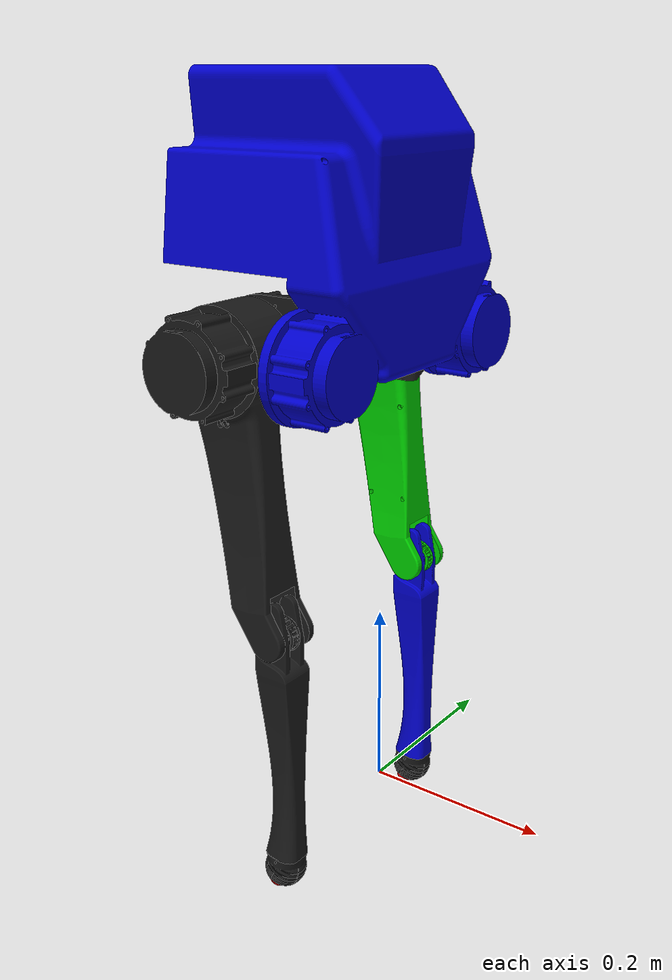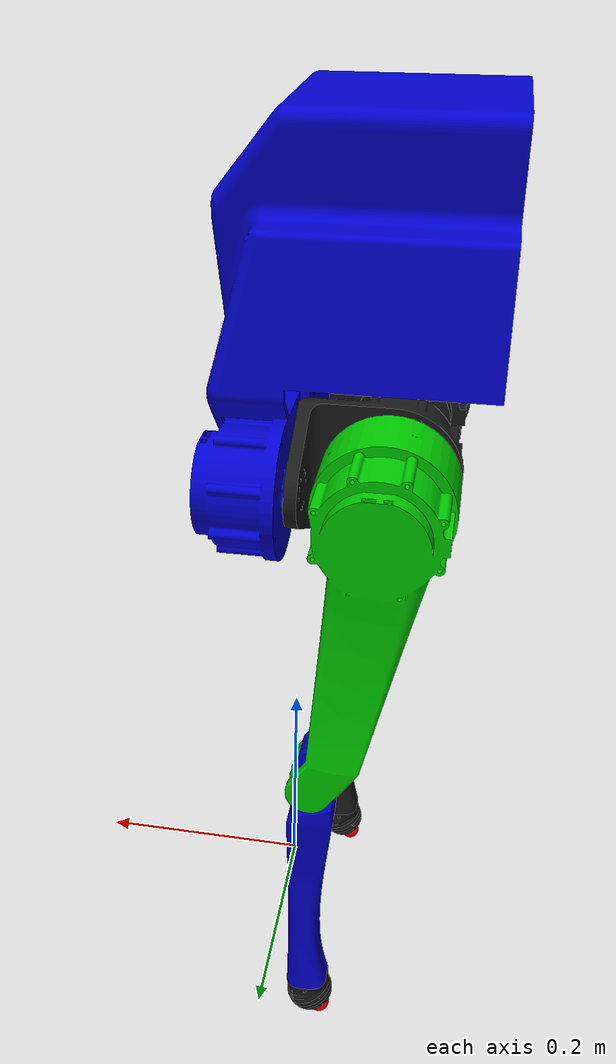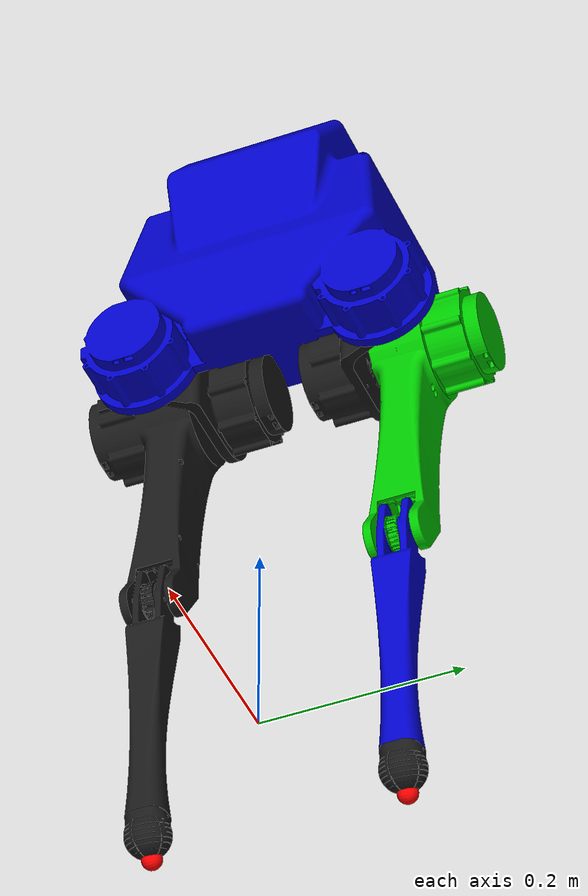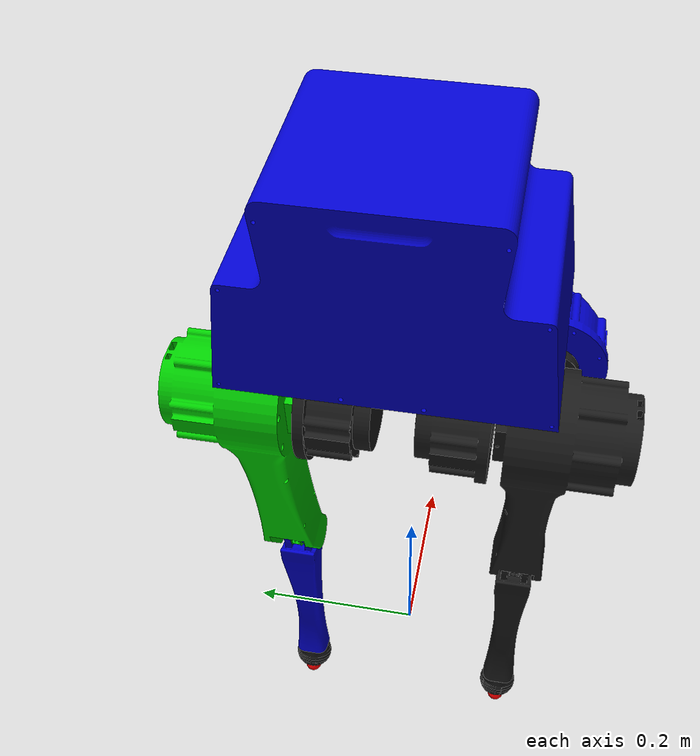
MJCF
<mujoco model="bipedal_robot">
  <compiler angle="radian" meshdir="../meshes/final_stl"/>

  <option integrator="implicitfast"/>

  <default>
    <geom contype="0" conaffinity="0"/>
  </default>

  <asset>
    <mesh name="body_v3_urdf" content_type="model/stl" file="body_v3_urdf.STL" scale="0.001 0.001 0.001"/>
    <mesh name="hip" content_type="model/stl" file="hip.STL" scale="0.001 0.001 0.001"/>
    <mesh name="femur_L_FINAL" content_type="model/stl" file="femur_L_FINAL.STL" scale="0.001 0.001 0.001"/>
    <mesh name="tibia_final" content_type="model/stl" file="tibia_final.STL" scale="0.001 0.001 0.001"/>
    <mesh name="foot_v4" content_type="model/stl" file="foot_v4.STL" scale="0.001 0.001 0.001"/>
    <mesh name="femur_R_FINAL" content_type="model/stl" file="femur_R_FINAL.STL" scale="0.001 0.001 0.001"/>
  </asset>

  <worldbody>
    <body name="base" pos="0 0 0.475">

      <freejoint name="base_free"/>

      <inertial pos="-0.00011 0.0 -0.04551" mass="7.13137"
                fullinertia="0.081061 0.106576 0.129409 0.000089 -0.000051 -0.022384"/>
      <geom pos="0 0 0" quat="0.499998 0.5 0.500002 0.5" type="mesh" rgba="0 0 0.8 1" mesh="body_v3_urdf"/>
    <body name="left_hip_connector_link" pos="-0.0125004 0.125 0.02088" quat="-3.89602e-06 -1.29867e-06 0.707107 0.707107">
      <inertial pos="0.06026 0.02088 -0.08217" quat="0.980491 0.00014315 -0.196565 0.000271321" mass="1.02839" diaginertia="0.00155031 0.001299 0.000962692"/>
      <joint name="left_hip_yaw" pos="0 0 0" axis="1 0 0" range="-1.57 0.5" actuatorfrcrange="-60 60" damping="0.1" frictionloss="0.01"/>
      <geom type="mesh" rgba="0.1 0.1 0.1 1" mesh="hip"/>
      <body name="left_femur_link" pos="0.074 0 0" quat="0.499998 0.5 -0.500002 -0.5">
        <inertial pos="0.16258 -0.0111 -0.08518" quat="0.298127 0.439729 -0.581363 0.616259" mass="1.45045" diaginertia="0.0100726 0.00963238 0.00200906"/>
        <joint name="left_hip_pitch" pos="0 0 0" axis="0 1 0" range="-0.18 2" actuatorfrcrange="-60 60" damping="0.1" frictionloss="0.01"/>
        <geom type="mesh" rgba="0 0.8 0 1" mesh="femur_L_FINAL"/>
        <body name="left_tibia_link" pos="0.28154 0 0.05165" quat="1.32679e-06 1 0 0">
          <inertial pos="0.132073 -0.372053 -0.0565048" quat="0.732657 0.672872 -0.0779594 0.0661738" mass="0.32337" diaginertia="0.00273931 0.0026494 0.000153024"/>
          <joint name="left_knee" pos="0 0 0" axis="0 1 0" range="0 2.57" actuatorfrcrange="-60 60" damping="0.1" frictionloss="0.01"/>
          <geom type="mesh" rgba="0 0 0.8 1" mesh="tibia_final"/>

          <!-- Change contype and conaffinity to 1 for contacts -->
          <geom pos="0.29957 0 0.01196" quat="0.601126 -0.601128 0.372352 0.372353" type="mesh" rgba="0.1 0.1 0.1 1" mesh="foot_v4" contype="1" conaffinity="1" condim="4"/>

          <!-- Contact point for RobotModel footPose/footJacobian (co-located with the foot geom). -->
          <site name="left_foot" pos="0.29957 0 0.01196" quat="0.601126 -0.601128 0.372352 0.372353" size="0.01" rgba="1 0 0 1"/>
        </body>
      </body>
    </body>
    <body name="right_hip_connector_link" pos="-0.0124995 -0.125 0.02088" quat="1.29867e-06 -3.89602e-06 0.707108 -0.707106">
      <inertial pos="0.060260 -0.020880 -0.082171" quat="0.000141 0.980492 -0.000270 0.196558" mass="1.02839" diaginertia="0.00155031 0.001299 0.000962692"/>
      <joint name="right_hip_yaw" pos="0 0 0" axis="1 0 0" range="-0.5 1.57" actuatorfrcrange="-60 60" damping="0.1" frictionloss="0.01"/>
      <geom type="mesh" rgba="0.1 0.1 0.1 1" mesh="hip"/>
      <body name="right_femur_link" pos="0.074 0 0" quat="0.499998 0.5 0.500002 0.5">
        <!-- Mirrored from left_femur_link. -->
        <inertial pos="0.162581 -0.011102 0.085180" quat="0.298128 -0.439727 0.581362 0.616262" mass="1.45045" diaginertia="0.0100726 0.00963238 0.00200906"/>
        <joint name="right_hip_pitch" pos="0 0 0" axis="0 1 0" range="-2 0.18" actuatorfrcrange="-60 60" damping="0.1" frictionloss="0.01"/>
        <geom type="mesh" rgba="0.1 0.1 0.1 1" mesh="femur_R_FINAL"/>
        <body name="right_tibia_link" pos="0.28154 0 -0.05165">
          <!-- Mirrored from left_tibia_link. -->
          <inertial pos="0.132070 0.372053 -0.056504" quat="0.672871 0.732659 -0.066170 0.077961" mass="0.32337" diaginertia="0.00273931 0.0026494 0.000153024"/>
          <joint name="right_knee" pos="0 0 0" axis="0 1 0" range="0 2.57" actuatorfrcrange="-60 60" damping="0.1" frictionloss="0.01"/>
          <geom type="mesh" rgba="0.1 0.1 0.1 1" mesh="tibia_final"/>

          <geom pos="0.29977 0 0.01196" quat="0.601126 -0.601128 0.372352 0.372353" type="mesh" rgba="0.1 0.1 0.1 1" mesh="foot_v4" contype="1" conaffinity="1" condim="4"/>

          <!-- Contact point for RobotModel footPose/footJacobian (co-located with the foot geom). -->
          <site name="right_foot" pos="0.29977 0 0.01196" quat="0.601126 -0.601128 0.372352 0.372353" size="0.01" rgba="1 0 0 1"/>
        </body>
      </body>
    </body>
    </body>
  </worldbody>

  <!-- Feet collide with the floor but NOT with each other (drop foot-foot self
       collision while keeping foot-ground contact). -->
  <contact>
    <exclude body1="left_tibia_link" body2="right_tibia_link"/>
  </contact>

  <keyframe>
  <key name="initial"
       qpos="
         0 0 0.499
         1 0 0 0
         0.125 0.6 1.15
        -0.125 -0.6 1.15
       "/>
  </keyframe>

  <!-- Position (servo) actuators: MuJoCo holds each joint at the commanded angle.
       The plugin treats POSITION actuators as position control. ctrl = target angle. -->

  <actuator>
    <motor name="left_hip_yaw"    joint="left_hip_yaw"    ctrlrange="-60 60" gear="1"/>
    <motor name="left_hip_pitch"  joint="left_hip_pitch"  ctrlrange="-60 60" gear="1"/>
    <motor name="left_knee"       joint="left_knee"       ctrlrange="-60 60" gear="1"/>
    <motor name="right_hip_yaw"   joint="right_hip_yaw"   ctrlrange="-60 60" gear="1"/>
    <motor name="right_hip_pitch" joint="right_hip_pitch" ctrlrange="-60 60" gear="1"/>
    <motor name="right_knee"      joint="right_knee"      ctrlrange="-60 60" gear="1"/>
  </actuator>

</mujoco>
